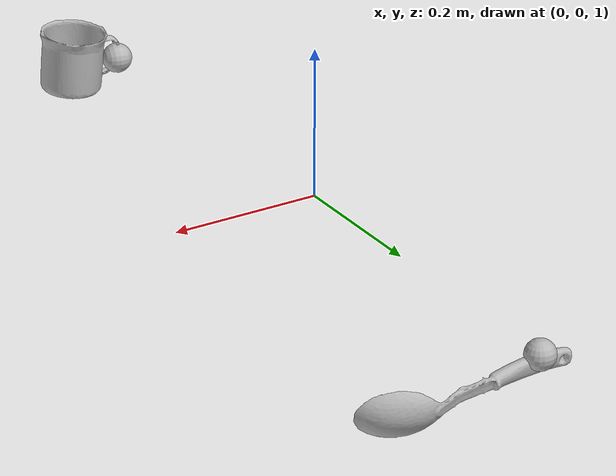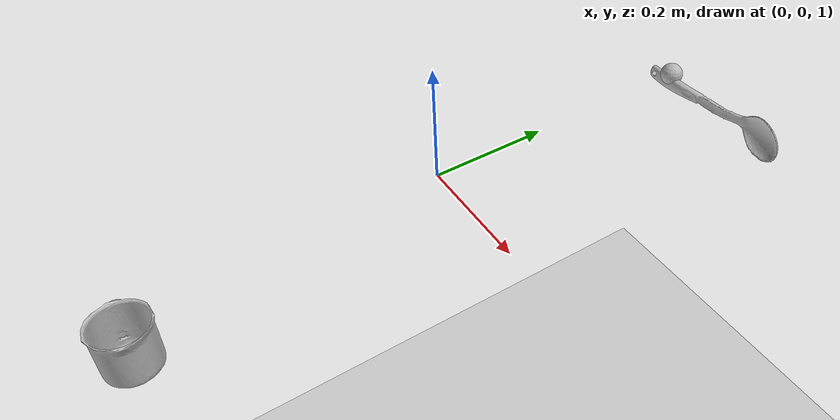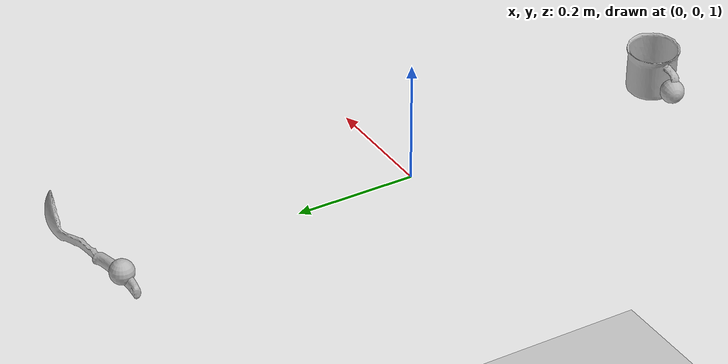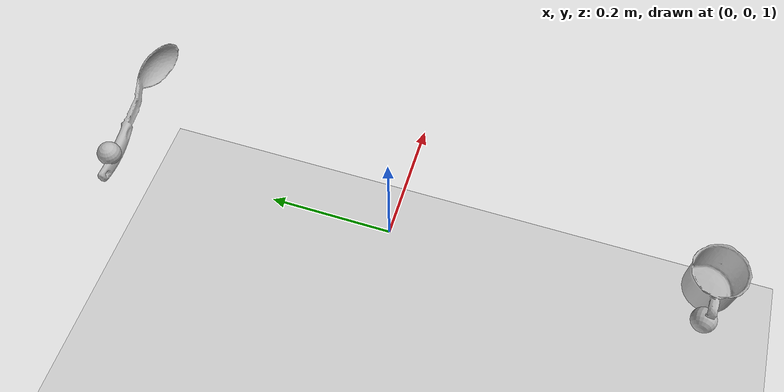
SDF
<sdf version="1.6">
 <world name="b_red_mug_b_serving_spoon_v">
  <include><uri>model://sun</uri></include>
  <include><uri>model://ground_plane</uri></include>
  <include>
   <uri>model://b_serving_spoon</uri>
   <pose>0.112572 0.508131 0.984633 1.382835 0.015399 0.080779</pose>
  </include>
  <plugin name="grains_factory" filename="libGrainsFactoryPlugin.so">
   <pose>0.061612 -0.504614 1.006537 0 0 0</pose>
   <mass>0.001</mass>
   <radius>0.015</radius>
   <quantity>100</quantity>
   <friction>0.4</friction>
   <friction2>0.4</friction2>
   <velocity_decay>0.3</velocity_decay>
  </plugin>
  <include><uri>model://b_red_mug</uri><pose>0.061612 -0.504614 1.006537 0.423677 0 3.060068</pose></include>
  <include>
   <uri>model://gripper</uri>
   <name>left_ee</name>
   <pose>0 0.5 1 0 0 0</pose>
   <plugin name="l_force_controller" filename="libvelocity_controller_plugin.so">
    <linkName>link</linkName>
    <topicName>set_l_ee_twist</topicName>
    <gains>
     <linear><P>100.0</P><I>0.0</I><D>25.0</D></linear>
     <angular><P>100.0</P><I>0.0</I><D>25.0</D></angular>
    </gains>
   </plugin>
   <plugin name="l_grip" filename="libGripPlugin.so">
    <parentLinkName>link</parentLinkName>
    <childLinkName>b_serving_spoon::link</childLinkName>
    <relativePose>0.112571612 0.00813051871955 -0.0153673645109 1.3828344221275815 0.015398730956486372 0.08077832485708741</relativePose>
   </plugin>
   <plugin name="l_tf_broadcaster" filename="libtf_broadcaster_plugin.so">
    <linkName>link</linkName>
    <frameName>l_gripper_tool_frame</frameName>
   </plugin>
  </include>
  <include>
   <uri>model://gripper</uri>
   <name>right_ee</name>
   <pose>0 -0.5 1 1.547368 1.402341 1.343703</pose>
   <plugin name="r_force_controller" filename="libvelocity_controller_plugin.so">
    <linkName>link</linkName>
    <topicName>set_r_ee_twist</topicName>
    <gains>
     <linear><P>100.0</P><I>0.0</I><D>25.0</D></linear>
     <angular><P>100.0</P><I>0.0</I><D>25.0</D></angular>
    </gains>
   </plugin>
   <plugin name="r_grip" filename="libGripPlugin.so">
    <parentLinkName>link</parentLinkName>
    <childLinkName>b_red_mug::link</childLinkName>
    <relativePose>-0.00780861 0.00428533 0.0614876 1.24173 -1.34456 1.65836</relativePose>
   </plugin>
   <plugin name="r_tf_broadcaster" filename="libtf_broadcaster_plugin.so">
    <linkName>link</linkName>
    <frameName>r_gripper_tool_frame</frameName>
   </plugin>
  </include>
  <plugin name="feature_visualization_plugin" filename="libgiskard_visualization_plugin.so"/>
 </world>
</sdf>

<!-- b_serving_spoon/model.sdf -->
<sdf version='1.6'>
	<model name='b_serving_spoon'>
		<static>false</static>
		<pose>0 0 0 0 0 0</pose>

		<link name='link'>
			<inertial>
			<mass>0.15</mass>
			<pose>0.0019638 -6.1791e-05 0.00018857 0 0 0</pose>
				<inertia>
					<ixx>0.0000075</ixx>
					<iyy>0.00112875</iyy>
					<izz>0.00112875</izz>
				</inertia>
			</inertial>
			<sensor name="tool_contact_sensor" type="contact">
				<always_on>true</always_on>
				<update_rate>30.0</update_rate>
				<contact>
					<collision>collision</collision>
				</contact>
				<plugin name="tool_bumper" filename="libgazebo_ros_bumper.so">
					<bumperTopicName>tool_contact_sensor_state</bumperTopicName>
					<frameName>world</frameName>
				</plugin>
			</sensor>
			<collision name='collision'>
				<geometry>
					<mesh>
						<uri>model://b_serving_spoon/b_serving_spoon.dae</uri>
					</mesh>
				</geometry>
				<surface>
					<friction>
						<ode>
							<mu>0.2</mu>
							<mu2>0.2</mu2>
						</ode>
					</friction>
				</surface>
			</collision>
			<visual name='visual'>
				<geometry>
					<mesh>
						<uri>model://b_serving_spoon/b_serving_spoon.dae</uri>
					</mesh>
				</geometry>
			</visual>
		</link>
	</model>
</sdf>

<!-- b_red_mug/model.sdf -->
<sdf version='1.6'>
	<model name='b_red_mug'>
		<static>false</static>
		<pose>0 0 0 0 0 0</pose>

		<link name='link'>
			<inertial>
			<mass>0.096</mass>
			<pose>-0.00011045 0.0017861 0.0028209 0 0 0</pose>
				<inertia>
					<ixx>1.66e-06</ixx>
					<ixy>0</ixy>
					<ixz>0</ixz>
					<iyy>1.357e-06</iyy>
					<iyz>0</iyz>
					<izz>7.1669e-07</izz>
				</inertia>
			</inertial>
			<collision name='collision'>
				<geometry>
					<mesh>
						<uri>model://b_red_mug/b_red_mug.dae</uri>
					</mesh>
				</geometry>
				<surface>
					<friction>
						<ode>
							<mu>0.2</mu>
							<mu2>0.2</mu2>
						</ode>
					</friction>
				</surface>
			</collision>
			<visual name='visual'>
				<geometry>
					<mesh>
						<uri>model://b_red_mug/b_red_mug.dae</uri>
					</mesh>
				</geometry>
			</visual>
		</link>
	</model>
</sdf>

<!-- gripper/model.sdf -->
<sdf version='1.6'>
    <model name='gripper'>
        <static>false</static>
        <allow_auto_disable>false</allow_auto_disable>

        <pose>0 0 0 0 0 0</pose>

        <link name='link'>
            <pose>0 0 0 0 0 0</pose>

            <gravity>false</gravity>

            <visual name='visual'>
                <geometry>
                    <sphere>
                        <radius>0.02</radius>
                    </sphere>
                </geometry>
            </visual>

        </link>
    </model>
</sdf>
